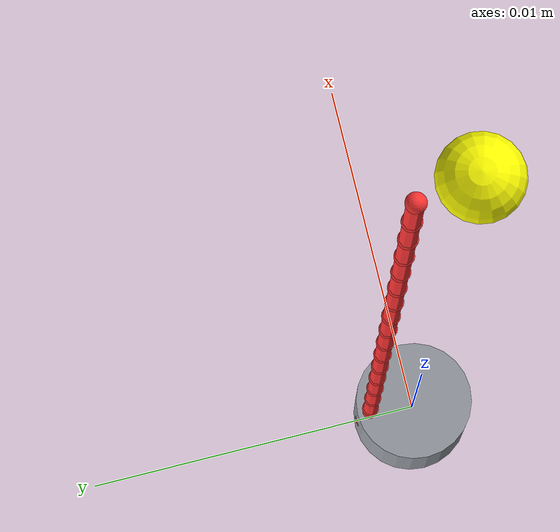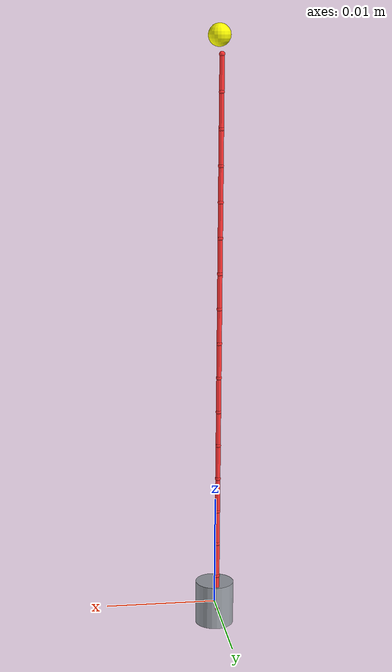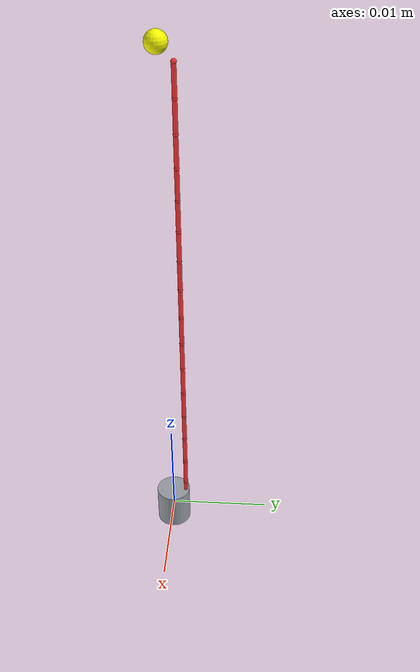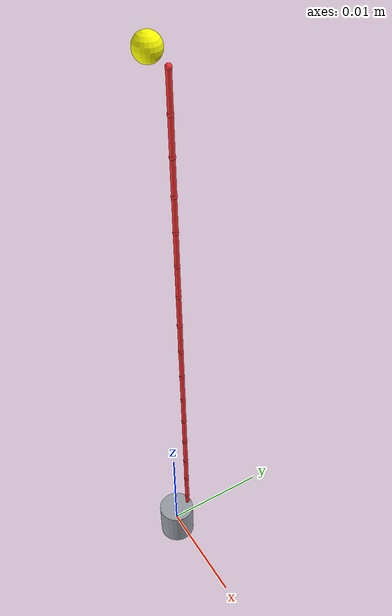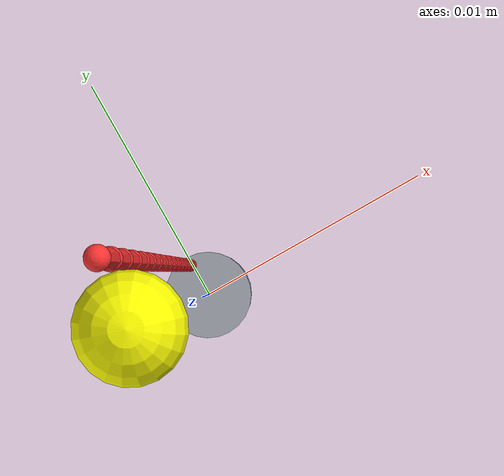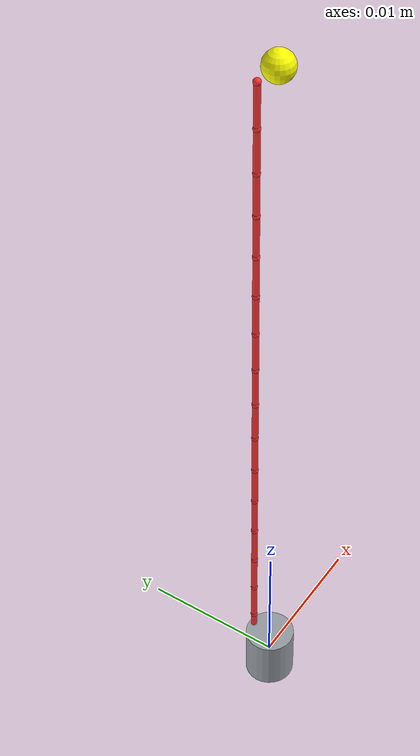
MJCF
<?xml version="1.0" ?>
<mujoco model="continuum_robot_v2">
  <compiler angle="degree"/>
  <option timestep="0.001" gravity="0 0 -9.81" integrator="implicitfast"/>
  <visual>
    <quality shadowsize="4096"/>
    <headlight diffuse="0.5 0.5 0.5" ambient="0.3 0.3 0.3" specular="0 0 0"/>
  </visual>
  <default>
    <geom type="capsule" contype="0" conaffinity="0" rgba="0 0 0 0"/>
    <default class="bend_joint">
      <joint type="hinge" stiffness="0.005" damping="0.0005" frictionloss="0.0002" armature="1e-06" limited="true" range="-45 45"/>
    </default>
    <default class="twist_joint">
      <joint type="hinge" stiffness="0.05" damping="0.001" frictionloss="0.0005" armature="1e-06" limited="true" range="-180 180"/>
    </default>
  </default>
  <asset>
    <mesh name="notch_mesh" file="meshes/notch.stl" scale="0.001 0.001 0.001"/>
    <mesh name="distal_mesh" file="meshes/distal.stl" scale="0.001 0.001 0.001"/>
    <texture name="checker" type="2d" builtin="checker" width="512" height="512" rgb1="0.20 0.23 0.27" rgb2="0.14 0.17 0.20"/>
    <material name="floor_mat" texture="checker" texrepeat="8 8" reflectance="0.25" shininess="0.1"/>
    <material name="niti_mat" rgba="0.690 0.878 0.902 1.0" shininess="0.85" specular="0.6" reflectance="0.1"/>
    <material name="tip_mat" rgba="1.0 0.50 0.10 1.0" shininess="0.90" specular="0.7"/>
    <material name="base_mat" rgba="0.60 0.62 0.65 1.0" shininess="0.6" specular="0.5"/>
  </asset>
  <worldbody>
    <geom name="floor" type="plane" size="0.8 0.8 0.1" pos="0 0 -0.005" material="floor_mat" contype="1" conaffinity="1"/>
    <light name="ambient" directional="false" pos="0 0 0.5" diffuse="0.25 0.25 0.25" specular="0 0 0" castshadow="false"/>
    <light name="sun" directional="true" pos="0.3 -0.5 1.0" dir="-0.3 0.5 -1.0" castshadow="true" diffuse="0.85 0.85 0.85" specular="0.30 0.30 0.30"/>
    <light name="fill_left" directional="true" pos="-0.6 0.3 0.5" dir="0.6 -0.3 -0.5" castshadow="false" diffuse="0.28 0.32 0.40" specular="0 0 0"/>
    <light name="fill_bottom" directional="true" pos="0 0 -0.3" dir="0 0 1" castshadow="false" diffuse="0.10 0.11 0.14" specular="0 0 0"/>
    <body name="robot_base" pos="0 0 0">
      <geom name="base_geom" type="cylinder" size="0.001750 0.002" mass="0.003" material="base_mat" contype="0" conaffinity="0" rgba="0.6 0.62 0.65 1.0"/>
      <site name="base_tendon_site" pos="0 0.001375 0" size="0.0004" rgba="1 0.2 0.2 1"/>
      <site name="base_site" pos="0 0 0" size="0.0005" rgba="0.5 0.5 0.5 0.5"/>
      <body name="segment_1" pos="0 0 0.003125">
        <joint class="bend_joint" name="bend_x_1" axis="1 0 0"/>
        <joint class="twist_joint" name="twist_z_1" axis="0 0 1"/>
        <geom name="col_geom_1" type="capsule" pos="0 0 0.001563" size="0.001750 0.001406" mass="7.836187e-05" contype="0" conaffinity="0" rgba="0 0 0 0"/>
        <geom name="vis_geom_1" type="mesh" mesh="notch_mesh" euler="-90 0 90" pos="0.00175 -0.00175 0.050" contype="0" conaffinity="0" group="1" material="niti_mat"/>
        <site name="tendon_point_1" pos="0 0.001375 0" size="0.00025" rgba="1 0.2 0.2 1"/>
        <body name="segment_2" pos="0 0 0.003125">
          <joint class="bend_joint" name="bend_x_2" axis="1 0 0"/>
          <joint class="twist_joint" name="twist_z_2" axis="0 0 1"/>
          <geom name="col_geom_2" type="capsule" pos="0 0 0.001563" size="0.001750 0.001406" mass="7.836187e-05" contype="0" conaffinity="0" rgba="0 0 0 0"/>
          <geom name="vis_geom_2" type="mesh" mesh="notch_mesh" euler="-90 0 90" pos="0.00175 -0.00175 0.050" contype="0" conaffinity="0" group="1" material="niti_mat"/>
          <site name="tendon_point_2" pos="0 0.001375 0" size="0.00025" rgba="1 0.2 0.2 1"/>
          <body name="segment_3" pos="0 0 0.003125">
            <joint class="bend_joint" name="bend_x_3" axis="1 0 0"/>
            <joint class="twist_joint" name="twist_z_3" axis="0 0 1"/>
            <geom name="col_geom_3" type="capsule" pos="0 0 0.001563" size="0.001750 0.001406" mass="7.836187e-05" contype="0" conaffinity="0" rgba="0 0 0 0"/>
            <geom name="vis_geom_3" type="mesh" mesh="notch_mesh" euler="-90 0 90" pos="0.00175 -0.00175 0.050" contype="0" conaffinity="0" group="1" material="niti_mat"/>
            <site name="tendon_point_3" pos="0 0.001375 0" size="0.00025" rgba="1 0.2 0.2 1"/>
            <body name="segment_4" pos="0 0 0.003125">
              <joint class="bend_joint" name="bend_x_4" axis="1 0 0"/>
              <joint class="twist_joint" name="twist_z_4" axis="0 0 1"/>
              <geom name="col_geom_4" type="capsule" pos="0 0 0.001563" size="0.001750 0.001406" mass="7.836187e-05" contype="0" conaffinity="0" rgba="0 0 0 0"/>
              <geom name="vis_geom_4" type="mesh" mesh="notch_mesh" euler="-90 0 90" pos="0.00175 -0.00175 0.050" contype="0" conaffinity="0" group="1" material="niti_mat"/>
              <site name="tendon_point_4" pos="0 0.001375 0" size="0.00025" rgba="1 0.2 0.2 1"/>
              <body name="segment_5" pos="0 0 0.003125">
                <joint class="bend_joint" name="bend_x_5" axis="1 0 0"/>
                <joint class="twist_joint" name="twist_z_5" axis="0 0 1"/>
                <geom name="col_geom_5" type="capsule" pos="0 0 0.001563" size="0.001750 0.001406" mass="7.836187e-05" contype="0" conaffinity="0" rgba="0 0 0 0"/>
                <geom name="vis_geom_5" type="mesh" mesh="notch_mesh" euler="-90 0 90" pos="0.00175 -0.00175 0.050" contype="0" conaffinity="0" group="1" material="niti_mat"/>
                <site name="tendon_point_5" pos="0 0.001375 0" size="0.00025" rgba="1 0.2 0.2 1"/>
                <body name="segment_6" pos="0 0 0.003125">
                  <joint class="bend_joint" name="bend_x_6" axis="1 0 0"/>
                  <joint class="twist_joint" name="twist_z_6" axis="0 0 1"/>
                  <geom name="col_geom_6" type="capsule" pos="0 0 0.001563" size="0.001750 0.001406" mass="7.836187e-05" contype="0" conaffinity="0" rgba="0 0 0 0"/>
                  <geom name="vis_geom_6" type="mesh" mesh="notch_mesh" euler="-90 0 90" pos="0.00175 -0.00175 0.050" contype="0" conaffinity="0" group="1" material="niti_mat"/>
                  <site name="tendon_point_6" pos="0 0.001375 0" size="0.00025" rgba="1 0.2 0.2 1"/>
                  <body name="segment_7" pos="0 0 0.003125">
                    <joint class="bend_joint" name="bend_x_7" axis="1 0 0"/>
                    <joint class="twist_joint" name="twist_z_7" axis="0 0 1"/>
                    <geom name="col_geom_7" type="capsule" pos="0 0 0.001563" size="0.001750 0.001406" mass="7.836187e-05" contype="0" conaffinity="0" rgba="0 0 0 0"/>
                    <geom name="vis_geom_7" type="mesh" mesh="notch_mesh" euler="-90 0 90" pos="0.00175 -0.00175 0.050" contype="0" conaffinity="0" group="1" material="niti_mat"/>
                    <site name="tendon_point_7" pos="0 0.001375 0" size="0.00025" rgba="1 0.2 0.2 1"/>
                    <body name="segment_8" pos="0 0 0.003125">
                      <joint class="bend_joint" name="bend_x_8" axis="1 0 0"/>
                      <joint class="twist_joint" name="twist_z_8" axis="0 0 1"/>
                      <geom name="col_geom_8" type="capsule" pos="0 0 0.001563" size="0.001750 0.001406" mass="7.836187e-05" contype="0" conaffinity="0" rgba="0 0 0 0"/>
                      <geom name="vis_geom_8" type="mesh" mesh="notch_mesh" euler="-90 0 90" pos="0.00175 -0.00175 0.050" contype="0" conaffinity="0" group="1" material="niti_mat"/>
                      <site name="tendon_point_8" pos="0 0.001375 0" size="0.00025" rgba="1 0.2 0.2 1"/>
                      <body name="segment_9" pos="0 0 0.003125">
                        <joint class="bend_joint" name="bend_x_9" axis="1 0 0"/>
                        <joint class="twist_joint" name="twist_z_9" axis="0 0 1"/>
                        <geom name="col_geom_9" type="capsule" pos="0 0 0.001563" size="0.001750 0.001406" mass="7.836187e-05" contype="0" conaffinity="0" rgba="0 0 0 0"/>
                        <geom name="vis_geom_9" type="mesh" mesh="notch_mesh" euler="-90 0 90" pos="0.00175 -0.00175 0.050" contype="0" conaffinity="0" group="1" material="niti_mat"/>
                        <site name="tendon_point_9" pos="0 0.001375 0" size="0.00025" rgba="1 0.2 0.2 1"/>
                        <body name="segment_10" pos="0 0 0.003125">
                          <joint class="bend_joint" name="bend_x_10" axis="1 0 0"/>
                          <joint class="twist_joint" name="twist_z_10" axis="0 0 1"/>
                          <geom name="col_geom_10" type="capsule" pos="0 0 0.001563" size="0.001750 0.001406" mass="7.836187e-05" contype="0" conaffinity="0" rgba="0 0 0 0"/>
                          <geom name="vis_geom_10" type="mesh" mesh="notch_mesh" euler="-90 0 90" pos="0.00175 -0.00175 0.050" contype="0" conaffinity="0" group="1" material="niti_mat"/>
                          <site name="tendon_point_10" pos="0 0.001375 0" size="0.00025" rgba="1 0.2 0.2 1"/>
                          <body name="segment_11" pos="0 0 0.003125">
                            <joint class="bend_joint" name="bend_x_11" axis="1 0 0"/>
                            <joint class="twist_joint" name="twist_z_11" axis="0 0 1"/>
                            <geom name="col_geom_11" type="capsule" pos="0 0 0.001563" size="0.001750 0.001406" mass="7.836187e-05" contype="0" conaffinity="0" rgba="0 0 0 0"/>
                            <geom name="vis_geom_11" type="mesh" mesh="notch_mesh" euler="-90 0 90" pos="0.00175 -0.00175 0.050" contype="0" conaffinity="0" group="1" material="niti_mat"/>
                            <site name="tendon_point_11" pos="0 0.001375 0" size="0.00025" rgba="1 0.2 0.2 1"/>
                            <body name="segment_12" pos="0 0 0.003125">
                              <joint class="bend_joint" name="bend_x_12" axis="1 0 0"/>
                              <joint class="twist_joint" name="twist_z_12" axis="0 0 1"/>
                              <geom name="col_geom_12" type="capsule" pos="0 0 0.001563" size="0.001750 0.001406" mass="7.836187e-05" contype="0" conaffinity="0" rgba="0 0 0 0"/>
                              <geom name="vis_geom_12" type="mesh" mesh="notch_mesh" euler="-90 0 90" pos="0.00175 -0.00175 0.050" contype="0" conaffinity="0" group="1" material="niti_mat"/>
                              <site name="tendon_point_12" pos="0 0.001375 0" size="0.00025" rgba="1 0.2 0.2 1"/>
                              <body name="segment_13" pos="0 0 0.003125">
                                <joint class="bend_joint" name="bend_x_13" axis="1 0 0"/>
                                <joint class="twist_joint" name="twist_z_13" axis="0 0 1"/>
                                <geom name="col_geom_13" type="capsule" pos="0 0 0.001563" size="0.001750 0.001406" mass="7.836187e-05" contype="0" conaffinity="0" rgba="0 0 0 0"/>
                                <geom name="vis_geom_13" type="mesh" mesh="notch_mesh" euler="-90 0 90" pos="0.00175 -0.00175 0.050" contype="0" conaffinity="0" group="1" material="niti_mat"/>
                                <site name="tendon_point_13" pos="0 0.001375 0" size="0.00025" rgba="1 0.2 0.2 1"/>
                                <body name="segment_14" pos="0 0 0.003125">
                                  <joint class="bend_joint" name="bend_x_14" axis="1 0 0"/>
                                  <joint class="twist_joint" name="twist_z_14" axis="0 0 1"/>
                                  <geom name="col_geom_14" type="capsule" pos="0 0 0.001563" size="0.001750 0.001406" mass="7.836187e-05" contype="0" conaffinity="0" rgba="0 0 0 0"/>
                                  <geom name="vis_geom_14" type="mesh" mesh="notch_mesh" euler="-90 0 90" pos="0.00175 -0.00175 0.050" contype="0" conaffinity="0" group="1" material="niti_mat"/>
                                  <site name="tendon_point_14" pos="0 0.001375 0" size="0.00025" rgba="1 0.2 0.2 1"/>
                                  <body name="segment_15" pos="0 0 0.003125">
                                    <joint class="bend_joint" name="bend_x_15" axis="1 0 0"/>
                                    <joint class="twist_joint" name="twist_z_15" axis="0 0 1"/>
                                    <geom name="col_geom_15" type="capsule" pos="0 0 0.001563" size="0.001750 0.001406" mass="7.836187e-05" contype="0" conaffinity="0" rgba="0 0 0 0"/>
                                    <geom name="vis_geom_15" type="mesh" mesh="notch_mesh" euler="-90 0 90" pos="0.00175 -0.00175 0.050" contype="0" conaffinity="0" group="1" material="niti_mat"/>
                                    <site name="tendon_point_15" pos="0 0.001375 0" size="0.00025" rgba="1 0.2 0.2 1"/>
                                    <body name="segment_16" pos="0 0 0.003125">
                                      <joint class="bend_joint" name="bend_x_16" axis="1 0 0"/>
                                      <joint class="twist_joint" name="twist_z_16" axis="0 0 1"/>
                                      <geom name="col_geom_16" type="capsule" pos="0 0 0.001563" size="0.001750 0.001406" mass="7.836187e-05" contype="0" conaffinity="0" rgba="0 0 0 0"/>
                                      <geom name="vis_geom_16" type="mesh" mesh="distal_mesh" euler="-90 0 90" pos="0.00175 -0.00175 0.050" contype="0" conaffinity="0" group="1" material="tip_mat"/>
                                      <site name="tendon_point_16" pos="0 0.001375 0" size="0.00025" rgba="1 0.2 0.2 1"/>
                                      <site name="tip_site" pos="0 0 0.001563" size="0.001" rgba="1 1 0 1"/>
                                      <camera name="endoscope" pos="0 0 0.003125" xyaxes="1 0 0 0 0 1" fovy="90"/>
                                    </body>
                                  </body>
                                </body>
                              </body>
                            </body>
                          </body>
                        </body>
                      </body>
                    </body>
                  </body>
                </body>
              </body>
            </body>
          </body>
        </body>
      </body>
    </body>
  </worldbody>
  <tendon>
    <spatial name="ppt_tendon" width="0.00022" rgba="1 0.2 0.2 0.9">
      <site site="base_tendon_site"/>
      <site site="tendon_point_1"/>
      <site site="tendon_point_2"/>
      <site site="tendon_point_3"/>
      <site site="tendon_point_4"/>
      <site site="tendon_point_5"/>
      <site site="tendon_point_6"/>
      <site site="tendon_point_7"/>
      <site site="tendon_point_8"/>
      <site site="tendon_point_9"/>
      <site site="tendon_point_10"/>
      <site site="tendon_point_11"/>
      <site site="tendon_point_12"/>
      <site site="tendon_point_13"/>
      <site site="tendon_point_14"/>
      <site site="tendon_point_15"/>
      <site site="tendon_point_16"/>
    </spatial>
  </tendon>
  <actuator>
    <motor name="push_pull_motor" tendon="ppt_tendon" ctrlrange="-5 5" gear="1"/>
    <motor name="twist_motor_1" joint="twist_z_1" ctrlrange="-0.5 0.5" gear="1"/>
    <motor name="twist_motor_2" joint="twist_z_2" ctrlrange="-0.5 0.5" gear="1"/>
    <motor name="twist_motor_3" joint="twist_z_3" ctrlrange="-0.5 0.5" gear="1"/>
    <motor name="twist_motor_4" joint="twist_z_4" ctrlrange="-0.5 0.5" gear="1"/>
    <motor name="twist_motor_5" joint="twist_z_5" ctrlrange="-0.5 0.5" gear="1"/>
    <motor name="twist_motor_6" joint="twist_z_6" ctrlrange="-0.5 0.5" gear="1"/>
    <motor name="twist_motor_7" joint="twist_z_7" ctrlrange="-0.5 0.5" gear="1"/>
    <motor name="twist_motor_8" joint="twist_z_8" ctrlrange="-0.5 0.5" gear="1"/>
    <motor name="twist_motor_9" joint="twist_z_9" ctrlrange="-0.5 0.5" gear="1"/>
    <motor name="twist_motor_10" joint="twist_z_10" ctrlrange="-0.5 0.5" gear="1"/>
    <motor name="twist_motor_11" joint="twist_z_11" ctrlrange="-0.5 0.5" gear="1"/>
    <motor name="twist_motor_12" joint="twist_z_12" ctrlrange="-0.5 0.5" gear="1"/>
    <motor name="twist_motor_13" joint="twist_z_13" ctrlrange="-0.5 0.5" gear="1"/>
    <motor name="twist_motor_14" joint="twist_z_14" ctrlrange="-0.5 0.5" gear="1"/>
    <motor name="twist_motor_15" joint="twist_z_15" ctrlrange="-0.5 0.5" gear="1"/>
    <motor name="twist_motor_16" joint="twist_z_16" ctrlrange="-0.5 0.5" gear="1"/>
  </actuator>
  <sensor>
    <tendonpos name="tendon_length" tendon="ppt_tendon"/>
    <tendonvel name="tendon_vel" tendon="ppt_tendon"/>
    <actuatorfrc name="push_pull_frc" actuator="push_pull_motor"/>
    <actuatorfrc name="twist_frc" actuator="twist_motor_1"/>
    <framepos name="tip_pos_sensor" objtype="site" objname="tip_site"/>
    <framequat name="tip_quat_sensor" objtype="site" objname="tip_site"/>
    <framelinvel name="tip_linvel_sensor" objtype="site" objname="tip_site"/>
    <frameangvel name="tip_angvel_sensor" objtype="site" objname="tip_site"/>
  </sensor>
</mujoco>
